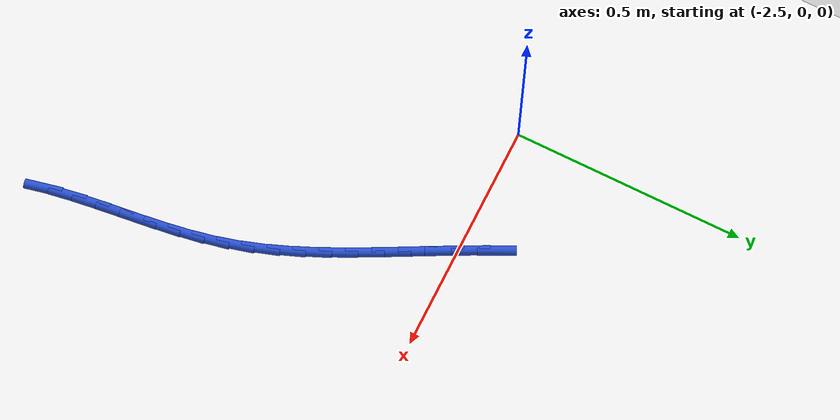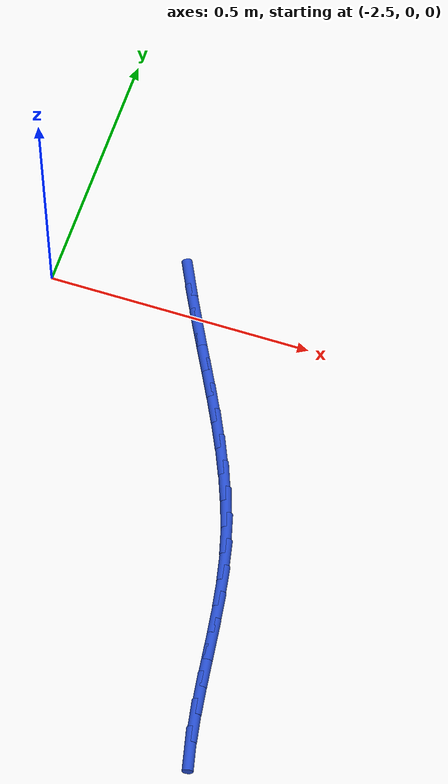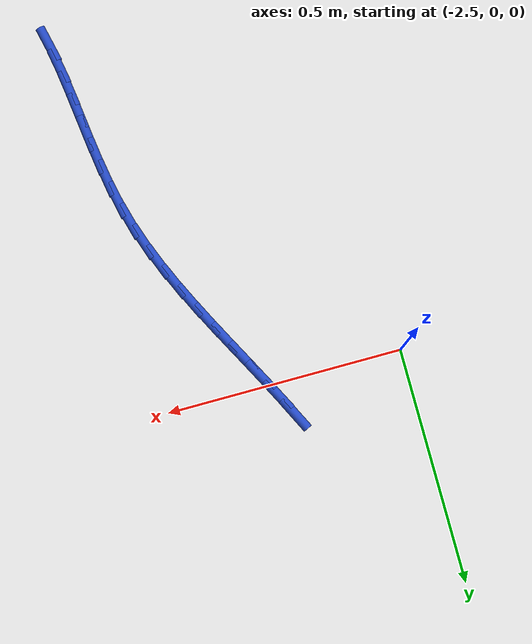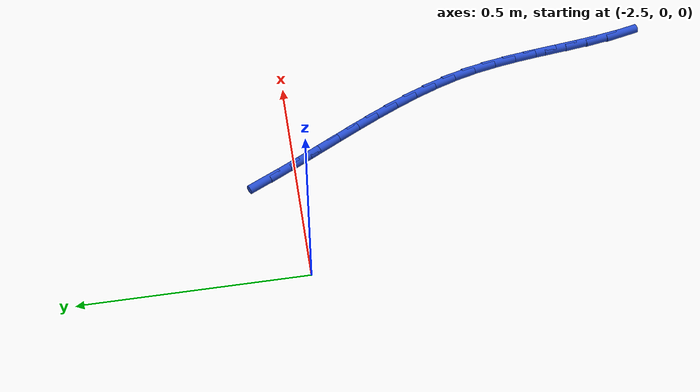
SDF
<sdf version="1.6">
 <world name="default">
  <model name="ground_plane">
   <static>1</static>
   <link name="link">
    <collision name="collision">
     <geometry><plane><normal>0 0 1</normal><size>100 100</size></plane></geometry>
     <surface><friction><ode><mu>100</mu><mu2>50</mu2></ode></friction></surface>
    </collision>
    <visual name="visual">
     <cast_shadows>0</cast_shadows>
     <geometry><plane><normal>0 0 1</normal><size>100 100</size></plane></geometry>
     <material>
      <script><uri>file://media/materials/scripts/gazebo.material</uri><name>Gazebo/WhiteGlow</name></script>
     </material>
    </visual>
   </link>
  </model>
  <model name="line">
   <link name="link_78">
    <pose>-2.2527863123421996 0.07148472296910585 0.01 0 1.57 -1.11266548625748</pose>
    <collision name="collision">
     <geometry><cylinder><radius>0.01</radius><length>0.08</length></cylinder></geometry>
    </collision>
    <visual name="visual">
     <material>
      <script><name>Gazebo/Blue</name><uri>file://media/materials/scripts/gazebo.material</uri></script>
     </material>
     <geometry><cylinder><radius>0.01</radius><length>0.08</length></cylinder></geometry>
    </visual>
   </link>
   <link name="link_79">
    <pose>-2.2293052047976154 0.023867575851033974 0.01 0 1.57 -1.0943932955382</pose>
    <collision name="collision">
     <geometry><cylinder><radius>0.01</radius><length>0.08</length></cylinder></geometry>
    </collision>
    <visual name="visual">
     <material>
      <script><name>Gazebo/Blue</name><uri>file://media/materials/scripts/gazebo.material</uri></script>
     </material>
     <geometry><cylinder><radius>0.01</radius><length>0.08</length></cylinder></geometry>
    </visual>
   </link>
   <link name="link_80">
    <pose>-2.2047902161017143 -0.023637719612414163 0.01 0 1.57 -1.0845860022830442</pose>
    <collision name="collision">
     <geometry><cylinder><radius>0.01</radius><length>0.08</length></cylinder></geometry>
    </collision>
    <visual name="visual">
     <material>
      <script><name>Gazebo/Blue</name><uri>file://media/materials/scripts/gazebo.material</uri></script>
     </material>
     <geometry><cylinder><radius>0.01</radius><length>0.08</length></cylinder></geometry>
    </visual>
   </link>
   <link name="link_81">
    <pose>-2.179701691669789 -0.07110620761883146 0.01 0 1.57 -1.0830573783520197</pose>
    <collision name="collision">
     <geometry><cylinder><radius>0.01</radius><length>0.08</length></cylinder></geometry>
    </collision>
    <visual name="visual">
     <material>
      <script><name>Gazebo/Blue</name><uri>file://media/materials/scripts/gazebo.material</uri></script>
     </material>
     <geometry><cylinder><radius>0.01</radius><length>0.08</length></cylinder></geometry>
    </visual>
   </link>
   <link name="link_82">
    <pose>-2.1544999769171316 -0.11861293236580853 0.01 0 1.57 -1.089754901192744</pose>
    <collision name="collision">
     <geometry><cylinder><radius>0.01</radius><length>0.08</length></cylinder></geometry>
    </collision>
    <visual name="visual">
     <material>
      <script><name>Gazebo/Blue</name><uri>file://media/materials/scripts/gazebo.material</uri></script>
     </material>
     <geometry><cylinder><radius>0.01</radius><length>0.08</length></cylinder></geometry>
    </visual>
   </link>
   <link name="link_83">
    <pose>-2.129645417259037 -0.16623293805093592 0.01 0 1.57 -1.10476046736722</pose>
    <collision name="collision">
     <geometry><cylinder><radius>0.01</radius><length>0.08</length></cylinder></geometry>
    </collision>
    <visual name="visual">
     <material>
      <script><name>Gazebo/Blue</name><uri>file://media/materials/scripts/gazebo.material</uri></script>
     </material>
     <geometry><cylinder><radius>0.01</radius><length>0.08</length></cylinder></geometry>
    </visual>
   </link>
   <link name="link_84">
    <pose>-2.1055983581107967 -0.21404126887180655 0.01 0 1.57 -1.1282792628049547</pose>
    <collision name="collision">
     <geometry><cylinder><radius>0.01</radius><length>0.08</length></cylinder></geometry>
    </collision>
    <visual name="visual">
     <material>
      <script><name>Gazebo/Blue</name><uri>file://media/materials/scripts/gazebo.material</uri></script>
     </material>
     <geometry><cylinder><radius>0.01</radius><length>0.08</length></cylinder></geometry>
    </visual>
   </link>
   <link name="link_85">
    <pose>-2.0828191448877043 -0.2621129690260102 0.01 0 1.57 -1.1606143264540518</pose>
    <collision name="collision">
     <geometry><cylinder><radius>0.01</radius><length>0.08</length></cylinder></geometry>
    </collision>
    <visual name="visual">
     <material>
      <script><name>Gazebo/Blue</name><uri>file://media/materials/scripts/gazebo.material</uri></script>
     </material>
     <geometry><cylinder><radius>0.01</radius><length>0.08</length></cylinder></geometry>
    </visual>
   </link>
   <link name="link_86">
    <pose>-2.0617681230050517 -0.3105230827111398 0.01 0 1.57 -1.2021212303502324</pose>
    <collision name="collision">
     <geometry><cylinder><radius>0.01</radius><length>0.08</length></cylinder></geometry>
    </collision>
    <visual name="visual">
     <material>
      <script><name>Gazebo/Blue</name><uri>file://media/materials/scripts/gazebo.material</uri></script>
     </material>
     <geometry><cylinder><radius>0.01</radius><length>0.08</length></cylinder></geometry>
    </visual>
   </link>
   <link name="link_87">
    <pose>-2.0429056378781323 -0.35934665412478606 0.01 0 1.57 -1.2531350898167064</pose>
    <collision name="collision">
     <geometry><cylinder><radius>0.01</radius><length>0.08</length></cylinder></geometry>
    </collision>
    <visual name="visual">
     <material>
      <script><name>Gazebo/Blue</name><uri>file://media/materials/scripts/gazebo.material</uri></script>
     </material>
     <geometry><cylinder><radius>0.01</radius><length>0.08</length></cylinder></geometry>
    </visual>
   </link>
   <link name="link_88">
    <pose>-2.02669203492224 -0.40865872746453924 0.01 0 1.57 -1.3131847402343113</pose>
    <collision name="collision">
     <geometry><cylinder><radius>0.01</radius><length>0.08</length></cylinder></geometry>
    </collision>
    <visual name="visual">
     <material>
      <script><name>Gazebo/Blue</name><uri>file://media/materials/scripts/gazebo.material</uri></script>
     </material>
     <geometry><cylinder><radius>0.01</radius><length>0.08</length></cylinder></geometry>
    </visual>
   </link>
   <link name="link_89">
    <pose>-2.013552994251292 -0.4585287462420267 0.01 0 1.57 -1.3698726960344527</pose>
    <collision name="collision">
     <geometry><cylinder><radius>0.01</radius><length>0.08</length></cylinder></geometry>
    </collision>
    <visual name="visual">
     <material>
      <script><name>Gazebo/Blue</name><uri>file://media/materials/scripts/gazebo.material</uri></script>
     </material>
     <geometry><cylinder><radius>0.01</radius><length>0.08</length></cylinder></geometry>
    </visual>
   </link>
   <link name="link_90">
    <pose>-2.003288679668394 -0.5089250926688301 0.01 0 1.57 -1.412070922754586</pose>
    <collision name="collision">
     <geometry><cylinder><radius>0.01</radius><length>0.08</length></cylinder></geometry>
    </collision>
    <visual name="visual">
     <material>
      <script><name>Gazebo/Blue</name><uri>file://media/materials/scripts/gazebo.material</uri></script>
     </material>
     <geometry><cylinder><radius>0.01</radius><length>0.08</length></cylinder></geometry>
    </visual>
   </link>
   <link name="link_91">
    <pose>-1.9951564866984768 -0.5597284568102732 0.01 0 1.57 -1.4392270663715652</pose>
    <collision name="collision">
     <geometry><cylinder><radius>0.01</radius><length>0.08</length></cylinder></geometry>
    </collision>
    <visual name="visual">
     <material>
      <script><name>Gazebo/Blue</name><uri>file://media/materials/scripts/gazebo.material</uri></script>
     </material>
     <geometry><cylinder><radius>0.01</radius><length>0.08</length></cylinder></geometry>
    </visual>
   </link>
   <link name="link_92">
    <pose>-1.9883957996966415 -0.610816618764017 0.01 0 1.57 -1.4513730193996066</pose>
    <collision name="collision">
     <geometry><cylinder><radius>0.01</radius><length>0.08</length></cylinder></geometry>
    </collision>
    <visual name="visual">
     <material>
      <script><name>Gazebo/Blue</name><uri>file://media/materials/scripts/gazebo.material</uri></script>
     </material>
     <geometry><cylinder><radius>0.01</radius><length>0.08</length></cylinder></geometry>
    </visual>
   </link>
   <link name="link_93">
    <pose>-1.982246003017992 -0.6620673586277206 0.01 0 1.57 -1.4485893391919158</pose>
    <collision name="collision">
     <geometry><cylinder><radius>0.01</radius><length>0.08</length></cylinder></geometry>
    </collision>
    <visual name="visual">
     <material>
      <script><name>Gazebo/Blue</name><uri>file://media/materials/scripts/gazebo.material</uri></script>
     </material>
     <geometry><cylinder><radius>0.01</radius><length>0.08</length></cylinder></geometry>
    </visual>
   </link>
   <link name="link_94">
    <pose>-1.9759464810176295 -0.7133584564990446 0.01 0 1.57 -1.4309234608253958</pose>
    <collision name="collision">
     <geometry><cylinder><radius>0.01</radius><length>0.08</length></cylinder></geometry>
    </collision>
    <visual name="visual">
     <material>
      <script><name>Gazebo/Blue</name><uri>file://media/materials/scripts/gazebo.material</uri></script>
     </material>
     <geometry><cylinder><radius>0.01</radius><length>0.08</length></cylinder></geometry>
    </visual>
   </link>
   <link name="link_95">
    <pose>-1.9687366180506567 -0.7645676924756487 0.01 0 1.57 -1.3984084037664002</pose>
    <collision name="collision">
     <geometry><cylinder><radius>0.01</radius><length>0.08</length></cylinder></geometry>
    </collision>
    <visual name="visual">
     <material>
      <script><name>Gazebo/Blue</name><uri>file://media/materials/scripts/gazebo.material</uri></script>
     </material>
     <geometry><cylinder><radius>0.01</radius><length>0.08</length></cylinder></geometry>
    </visual>
   </link>
   <link name="link_96">
    <pose>-1.9598557984721772 -0.8155728466551921 0.01 0 1.57 -1.3511794202883725</pose>
    <collision name="collision">
     <geometry><cylinder><radius>0.01</radius><length>0.08</length></cylinder></geometry>
    </collision>
    <visual name="visual">
     <material>
      <script><name>Gazebo/Blue</name><uri>file://media/materials/scripts/gazebo.material</uri></script>
     </material>
     <geometry><cylinder><radius>0.01</radius><length>0.08</length></cylinder></geometry>
    </visual>
   </link>
  </model>
 </world>
</sdf>
